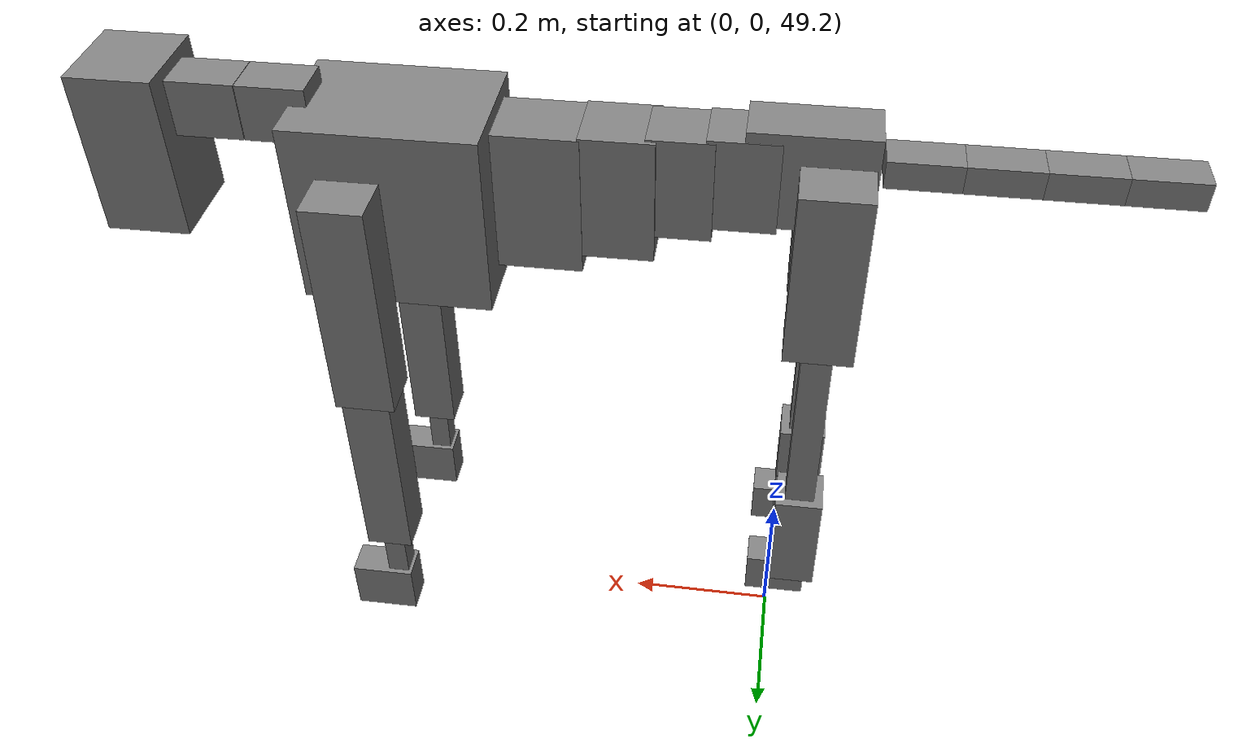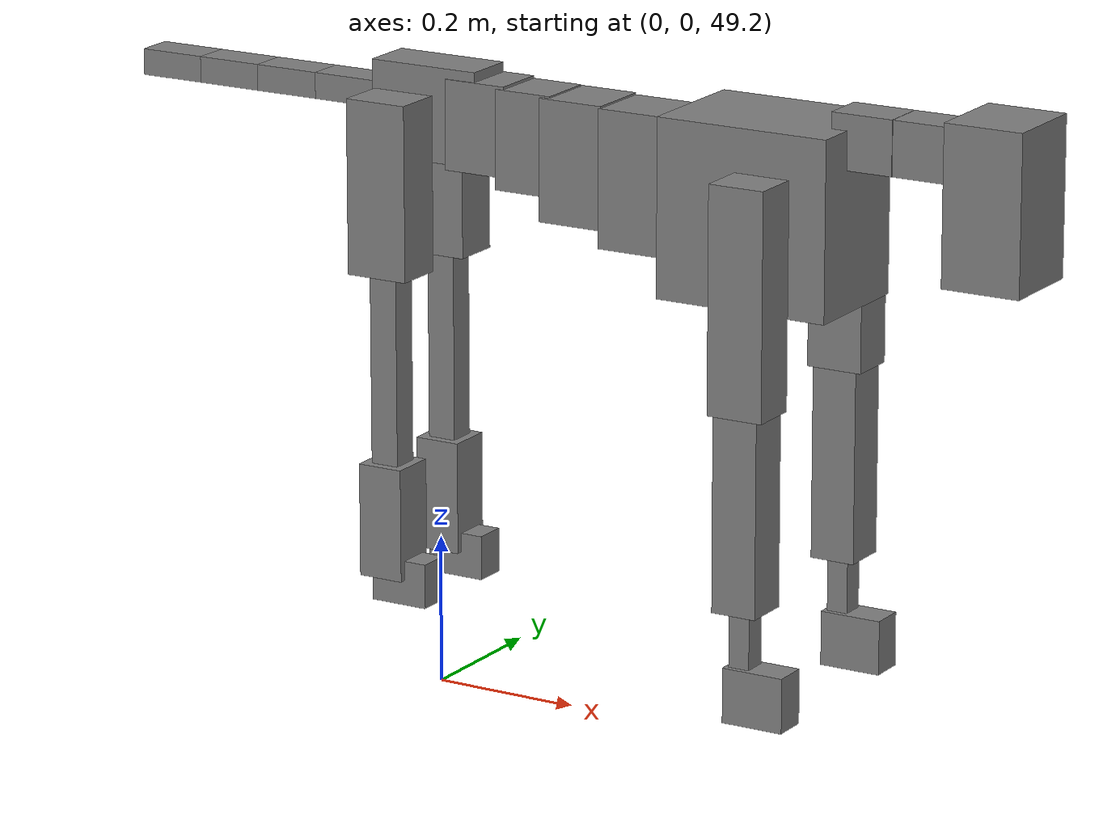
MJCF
<mujoco model="dog">

    <default>
        <joint armature="0.02" stiffness="1" damping="0.2" limited="true"/>
        <geom condim="3" friction="1 0.05 0.05" margin="0.01"/>
        <motor ctrllimited="true" ctrlrange="-1.0 1.0" forcelimited="true" gear="50"/>
    </default>

    <compiler inertiafromgeom="true" angle="radian"/>

    <option timestep="0.016" iterations="50" tolerance="1e-10" solver="Newton" jacobian="dense" cone="pyramidal"/>

    <size nconmax="20000" njmax="60000" nstack="5000000"/>
    <visual>
        <map force="0.1" zfar="30"/>
        <rgba haze="0.15 0.25 0.35 1"/>
        <quality shadowsize="2048"/>
        <global offwidth="800" offheight="800"/>
    </visual>

    <asset>
        <texture type="skybox" builtin="gradient" rgb1="0.3 0.5 0.7" rgb2="0 0 0" width="512" height="512"/>
        <texture name="texplane" type="2d" builtin="checker" rgb1=".2 .3 .4" rgb2=".1 0.15 0.2" width="512" height="512"
                 mark="cross" markrgb=".8 .8 .8"/>
        <texture name="texgeom" type="cube" builtin="flat" mark="cross" width="127" height="1278" rgb1="0.8 0.6 0.4"
                 rgb2="0.8 0.6 0.4" markrgb="1 1 1" random="0.01"/>

        <material name="matplane" reflectance="0.3" texture="texplane" texrepeat="1 1" texuniform="true"/>
        <material name="matgeom" texture="texgeom" texuniform="true" rgba="0.8 0.6 .4 1"/>
    </asset>

    <worldbody>
        <geom name="floor" pos="0 0 0" size="0 0 .25" type="plane" material="matplane" condim="3"/>

        <light directional="false" diffuse=".2 .2 .2" specular="0 0 0" pos="0 0 5" dir="0 0 -1" castshadow="false"/>
        <light mode="targetbodycom" target="torso" directional="false" diffuse=".8 .8 .8" specular="0.3 0.3 0.3"
               pos="0 0 4.0" dir="0 0 -1"/>

        <body name="root" pos="0 0 50">
            <freejoint name="root_1"/>
            <geom type="box" pos="0 0 -0.02" size="0.0774  0.0358  0.063" density="2030"/>

            <body name="spine1" pos="0.054 0 0">
                <joint name="spine1_y" axis="0 1 0" range="0 0.7" limited="true"/>
                <geom type="box" pos="0.02375 0 -0.03" size="0.04375  0.0375  0.05985" density="2030"/>

                <body name="spine2" pos="0.0612 0 0">
                    <joint name="spine2_y" axis="0 1 0" range="-0.15 0.15" limited="true"/>
                    <geom type="box" pos="0.03555  0  -0.04" size="0.04055  0.039  0.06615" density="2030"/>

                    <body name="spine3" pos="0.0730 0 0">
                        <joint name="spine3_y" axis="0 1 0" range="-0.15 0.15" limited="true"/>
                        <geom type="box" pos="0.03555  0  -0.057" size="0.04555  0.0445  0.081" density="2030"/>

                        <body name="spine4" pos="0.0780 0 0">
                            <joint name="spine4_y" axis="0 1 0" range="-0.15 0.15" limited="true"/>
                            <geom type="box" pos="0.05265  0  -0.07" size="0.05265  0.045  0.09135" density="2030"/>

                            <body name="torso" pos="0.1082 0 0">
                                <joint name="torso_y" axis="0 1 0" range="-0.15 0.15" limited="true"/>
                                <geom type="box" pos="0.11925  0  -0.085" size="0.11925  0.085  0.11745"
                                      density="2030"/>

                                <body name="neck1" pos="0.2160  0   0.0180">
                                    <joint name="neck1_y" axis="0 1 0" range="-1.2  -1" limited="true"/>
                                    <geom type="box" pos="0.0423  0  0" size="0.0423  0.03  0.036" density="2325"/>

                                    <body name="neck2" pos="0.0853  0  0">
                                        <joint name="neck2_y" axis="0 1 0" range="0.1  0" limited="true"/>
                                        <geom type="box" pos="0.0423  0  0" size="0.0423  0.03  0.036" density="2325"/>

                                        <body name="head" pos="0.0853  0  0">
                                            <joint name="head_y" axis="0 1 0" range="-0.3  -0.2" limited="true"/>
                                            <geom type="box" pos="0.0531  0  -0.055" size="0.0531  0.06  0.1044"
                                                  density="4030"/>

                                        </body>
                                    </body>
                                </body>

                                <body name="front_shoulder" pos="0.156  0   -0.0480">
                                    <joint name="front_shoulder_y" axis="0 1 0" range="-1 1.5" limited="true"/>
                                    <geom type="box" pos="0 0.13 -0.1215" size="0.0382  0.0327  0.1481" density="1158"/>
                                    <geom type="box" pos="0 -0.13 -0.1215" size="0.0382  0.0327  0.1481"
                                          density="1158"/>

                                    <body name="front_elbow" pos="0  0  -0.2430">
                                        <joint name="front_elbow_y" axis="0 1 0" range="-2 0" limited="true"/>
                                        <geom type="box" pos="0 0.13 -0.1412" size="0.0307  0.0314  0.1412"
                                              density="1081"/>
                                        <geom type="box" pos="0 -0.13 -0.1412" size="0.0307  0.0314  0.1412"
                                              density="1081"/>

                                        <body name="front_wrist" pos="0  0  -0.2824">
                                            <joint name="front_wrist_y" axis="0 1 0" range="-0.2 0" limited="true"/>
                                            <geom type="box" pos="0 0.13 -0.0442" size="0.0144  0.0160  0.0574"
                                                  density="1664"/>
                                            <geom type="box" pos="0 -0.13 -0.0442" size="0.0144  0.0160  0.0574"
                                                  density="1664"/>

                                            <body name="front_finger_end" pos="0  0  -0.0884">
                                                <joint name="front_finger_y" axis="0 1 0" range="-0.4 1"
                                                       limited="true"/>
                                                <geom type="box" pos="0.0231  0.13  -0.0214"
                                                      size="0.0423  0.0231  0.0364" density="1515"/>
                                                <geom type="box" pos="0.0231  -0.13  -0.0214"
                                                      size="0.0423  0.0231  0.0364" density="1515"/>

                                            </body>

                                        </body>
                                    </body>
                                </body>

                            </body>
                        </body>
                    </body>
                </body>
            </body>

            <body name="back_hip" pos="-0.03 0 -0.018">
                <joint name="back_hip_y" axis="0 1 0" range="-1.5 0.3" limited="true"/>
                <geom type="box" pos="0 0.07 -0.0937" size="0.0433  0.0340  0.1165" density="1154"/>
                <geom type="box" pos="0 -0.07 -0.0937" size="0.0433  0.0340  0.1165" density="1154"/>

                <body name="back_knee" pos="0  0  -0.1875">
                    <joint name="back_knee_y" axis="0 1 0" range="0 2.8" limited="true"/>
                    <geom type="box" pos="0 0.07 -0.1442" size="0.0195  0.0193  0.1597" density="1227"/>
                    <geom type="box" pos="0 -0.07 -0.1442" size="0.0195  0.0193  0.1597" density="1227"/>

                    <body name="back_ankle" pos="0  0  -0.2883">
                        <joint name="back_ankle_y" axis="0 1 0" range="-2.2 0" limited="true"/>
                        <geom type="box" pos="0 0.07 -0.0648" size="0.0314  0.0314  0.0760" density="1284"/>
                        <geom type="box" pos="0 -0.07 -0.0648" size="0.0314  0.0314  0.0760" density="1284"/>

                        <body name="back_toe_end" pos="0  0  -0.1296">
                            <joint name="back_toe_y" axis="0 1 0" range="-0.4 1" limited="true"/>
                            <geom type="box" pos="0.0221  0.07  -0.0150" size="0.0404  0.0221  0.0300" density="1515"/>
                            <geom type="box" pos="0.0221  -0.07  -0.0150" size="0.0404  0.0221  0.0300" density="1515"/>

                        </body>
                    </body>
                </body>
            </body>

            <body name="tail1" pos="-0.074 0 -0.006">
                <joint name="tail1_y" axis="0 1 0" range="-0.2 0.2" limited="true"/>
                <geom type="box" pos="-0.0536  0  0" size="0.045  0.025  0.0175" density="1587"/>

                <body name="tail2" pos="-0.09 0 0">
                    <joint name="tail2_y" axis="0 1 0" range="-0.2 0.2" limited="true"/>
                    <geom type="box" pos="-0.0536  0  0" size="0.045  0.025  0.0175" density="1587"/>

                    <body name="tail3" pos="-0.09 0 0">
                        <joint name="tail3_y" axis="0 1 0" range="-0.2 0.2" limited="true"/>
                        <geom type="box" pos="-0.0536  0  0" size="0.045  0.025  0.0175" density="1587"/>

                        <body name="tail4" pos="-0.09 0 0">
                            <joint name="tail4_y" axis="0 1 0" range="-0.2 0.2" limited="true"/>
                            <geom type="box" pos="-0.0536  0  0" size="0.045  0.025  0.0175" density="1587"/>

                        </body>
                    </body>
                </body>
            </body>
        </body>
    </worldbody>

    <actuator>
        <motor joint="spine1_y" forcerange="-150 150     "/>
        <motor joint="spine2_y" forcerange="-150 150     "/>
        <motor joint="spine3_y" forcerange="-150 150     "/>
        <motor joint="spine4_y" forcerange="-150 150     "/>
        <motor joint="torso_y" forcerange="-150 150     "/>
        <motor joint="neck1_y" forcerange="-100 100       "/>
        <motor joint="neck2_y" forcerange="-100 100       "/>
        <motor joint="head_y" forcerange="-150 150       "/>
        <motor joint="front_shoulder_y" forcerange="-132.94 184.90"/>
        <motor joint="front_elbow_y" forcerange="-150.72 177.84"/>
        <motor joint="front_wrist_y" forcerange="-53.90 73.98"/>
        <motor joint="front_finger_y" forcerange="-23.39 59.72"/>
        <motor joint="back_hip_y" forcerange="-358.36 294.32"/>
        <motor joint="back_knee_y" forcerange="-271.73 208.50"/>
        <motor joint="back_angle_y" forcerange="-247.95 153.98"/>
        <motor joint="back_toe_y" forcerange="-75.25 21.18"/>
        <motor joint="tail1_y" forcerange="-50 50     "/>
        <motor joint="tail2_y" forcerange="-50 50     "/>
        <motor joint="tail3_y" forcerange="-50 50     "/>
        <motor joint="tail4_y" forcerange="-50 50     "/>
    </actuator>
</mujoco>
